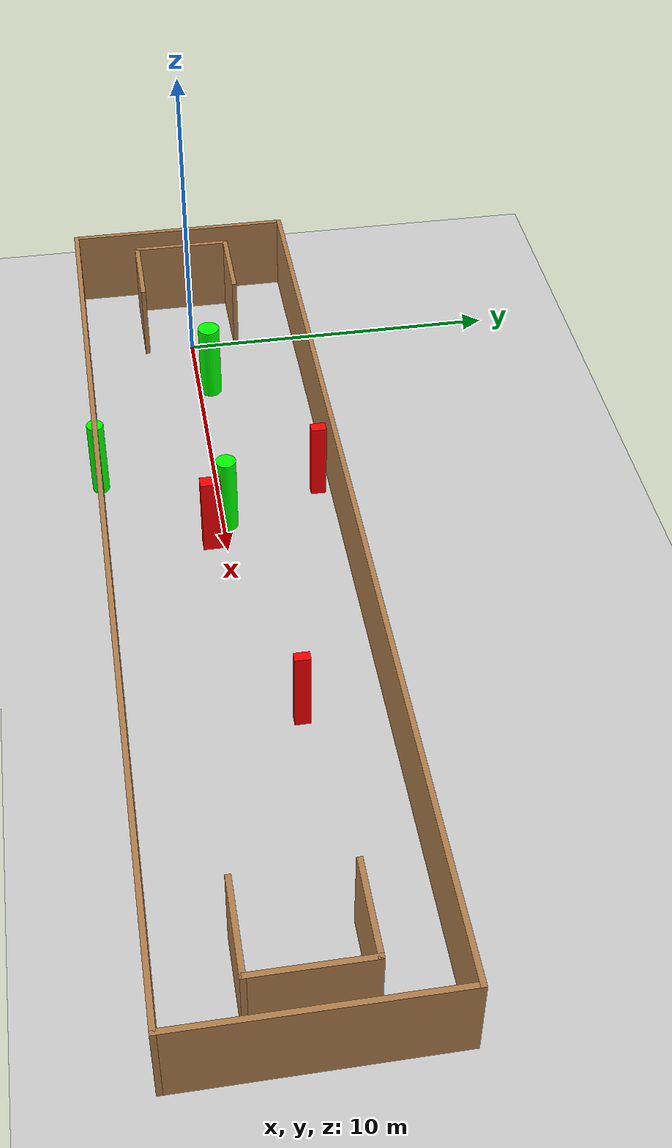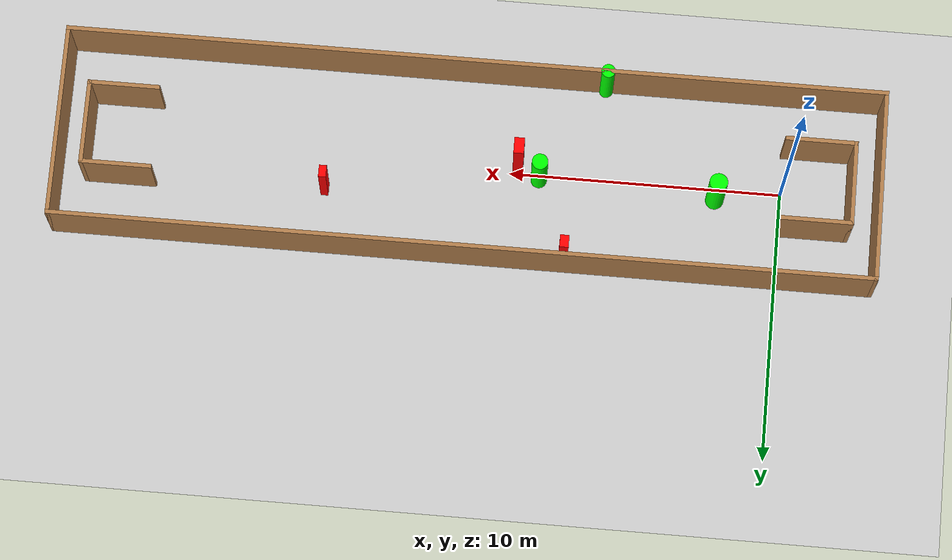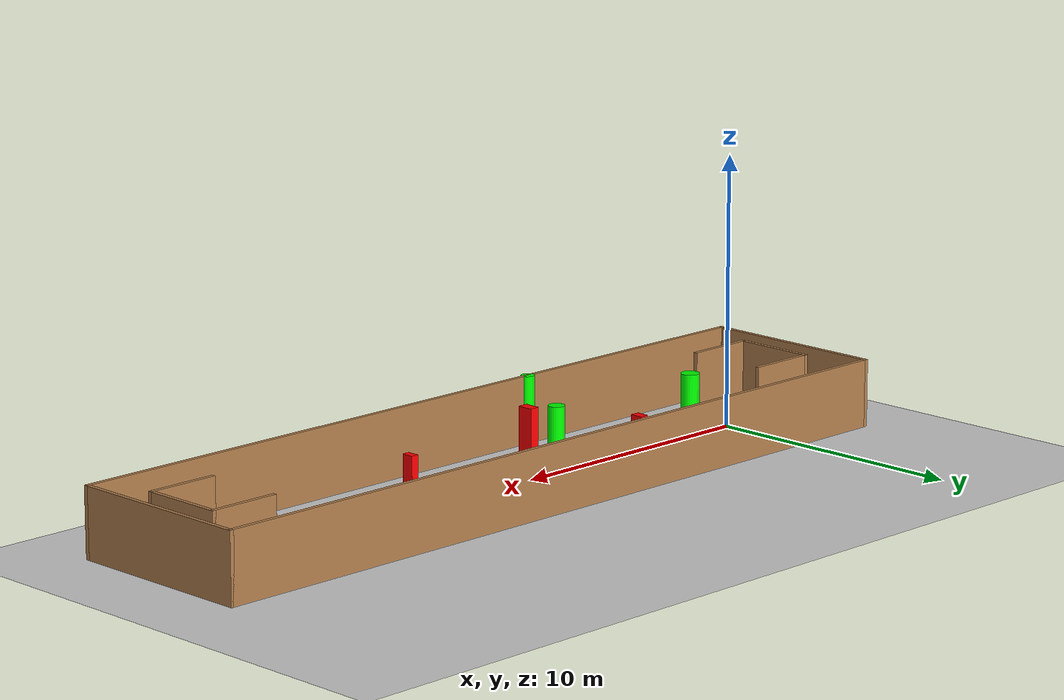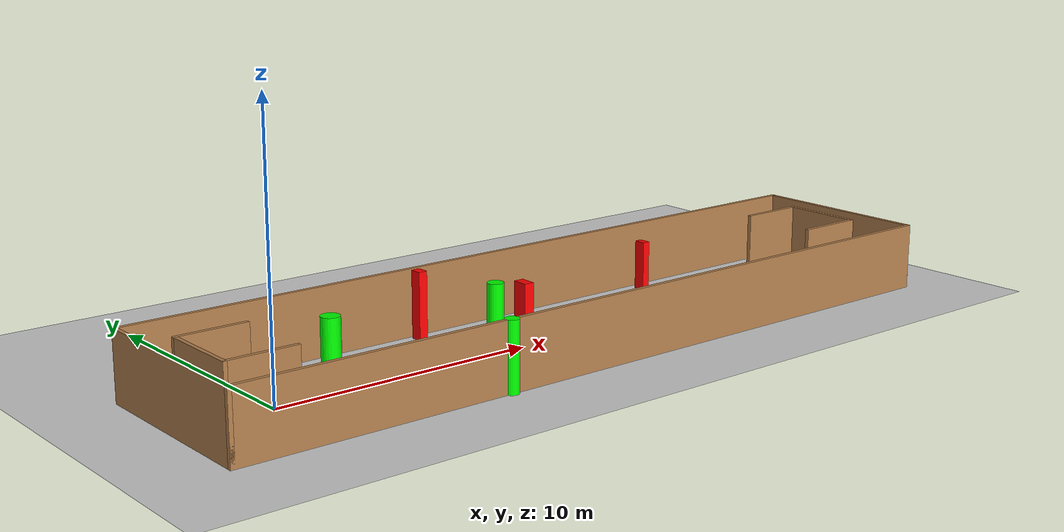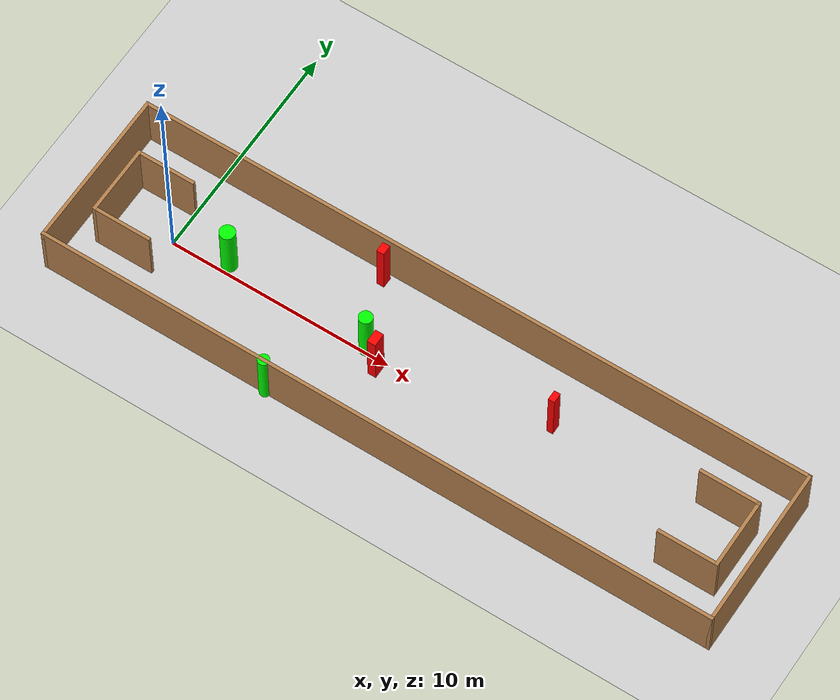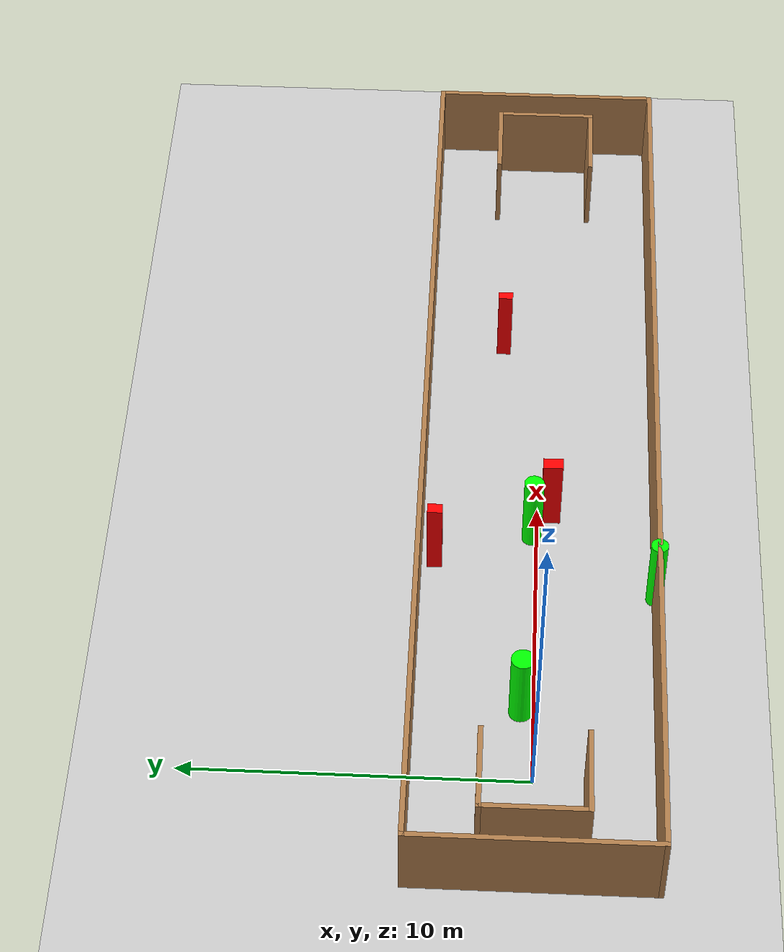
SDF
<sdf version="1.7">
 <world name="default">
  <light name="sun" type="directional">
   <pose>0 0 10 0 -0 0</pose>
   <diffuse>0.8 0.8 0.8 1</diffuse>
   <specular>0.2 0.2 0.2 1</specular>
   <attenuation>
    <range>1000</range>
    <constant>0.9</constant>
    <linear>0.01</linear>
    <quadratic>0.001</quadratic>
   </attenuation>
   <direction>-0.5 0.1 -0.9</direction>
   <spot><inner_angle>0</inner_angle><outer_angle>0</outer_angle><falloff>0</falloff></spot>
  </light>
  <model name="ground_plane">
   <static>1</static>
   <link name="link">
    <collision name="collision">
     <geometry><plane><normal>0 0 1</normal><size>100 100</size></plane></geometry>
     <surface>
      <contact><collide_bitmask>65535</collide_bitmask></contact>
      <friction><ode><mu>100</mu><mu2>50</mu2></ode></friction>
     </surface>
    </collision>
    <visual name="visual">
     <cast_shadows>0</cast_shadows>
     <geometry><plane><normal>0 0 1</normal><size>100 100</size></plane></geometry>
     <material>
      <script><uri>file://media/materials/scripts/gazebo.material</uri><name>Gazebo/Grey</name></script>
     </material>
    </visual>
   </link>
  </model>
  <gravity>0 0 -9.8</gravity>
  <magnetic_field>6e-06 2.3e-05 -4.2e-05</magnetic_field>
  <atmosphere type="adiabatic"/>
  <physics type="ode">
   <max_step_size>0.001</max_step_size>
   <real_time_factor>1</real_time_factor>
   <real_time_update_rate>1000</real_time_update_rate>
  </physics>
  <scene><ambient>0.4 0.4 0.4 1</ambient><background>0.7 0.7 0.7 1</background><shadows>1</shadows></scene>
  <spherical_coordinates>
   <surface_model>EARTH_WGS84</surface_model>
   <latitude_deg>0</latitude_deg>
   <longitude_deg>0</longitude_deg>
   <elevation>0</elevation>
   <heading_deg>0</heading_deg>
  </spherical_coordinates>
  <model name="my_base_walls">
   <link name="Wall_0">
    <collision name="Wall_0_Collision">
     <geometry><box><size>7.15 0.15 2.5</size></box></geometry>
     <pose>0 0 1.25 0 -0 0</pose>
    </collision>
    <visual name="Wall_0_Visual">
     <pose>0 0 1.25 0 -0 0</pose>
     <geometry><box><size>7.15 0.15 2.5</size></box></geometry>
     <material>
      <script><uri>file://media/materials/scripts/gazebo.material</uri><name>Gazebo/Wood</name></script>
      <ambient>1 1 1 1</ambient>
     </material>
     <meta><layer>0</layer></meta>
    </visual>
    <pose>-15 0 0 0 -0 1.5708</pose>
   </link>
   <link name="Wall_10">
    <collision name="Wall_10_Collision">
     <geometry><box><size>2.65 0.15 2.5</size></box></geometry>
     <pose>0 0 1.25 0 -0 0</pose>
    </collision>
    <visual name="Wall_10_Visual">
     <pose>0 0 1.25 0 -0 0</pose>
     <geometry><box><size>2.65 0.15 2.5</size></box></geometry>
     <material>
      <script><uri>file://media/materials/scripts/gazebo.material</uri><name>Gazebo/Wood</name></script>
      <ambient>1 1 1 1</ambient>
     </material>
     <meta><layer>0</layer></meta>
    </visual>
    <pose>-12.75 -1.5 0 0 -0 0</pose>
   </link>
   <link name="Wall_12">
    <collision name="Wall_12_Collision">
     <geometry><box><size>2.65 0.15 2.5</size></box></geometry>
     <pose>0 0 1.25 0 -0 0</pose>
    </collision>
    <visual name="Wall_12_Visual">
     <pose>0 0 1.25 0 -0 0</pose>
     <geometry><box><size>2.65 0.15 2.5</size></box></geometry>
     <material>
      <script><uri>file://media/materials/scripts/gazebo.material</uri><name>Gazebo/Wood</name></script>
      <ambient>1 1 1 1</ambient>
     </material>
     <meta><layer>0</layer></meta>
    </visual>
    <pose>-12.75 1.5 0 0 -0 0</pose>
   </link>
   <link name="Wall_14">
    <collision name="Wall_14_Collision">
     <geometry><box><size>3.15 0.15 2.5</size></box></geometry>
     <pose>0 0 1.25 0 -0 0</pose>
    </collision>
    <visual name="Wall_14_Visual">
     <pose>0 0 1.25 0 -0 0</pose>
     <geometry><box><size>3.15 0.15 2.5</size></box></geometry>
     <material>
      <script><uri>file://media/materials/scripts/gazebo.material</uri><name>Gazebo/Wood</name></script>
      <ambient>1 1 1 1</ambient>
     </material>
     <meta><layer>0</layer></meta>
    </visual>
    <pose>14 0 0 0 -0 -1.5708</pose>
   </link>
   <link name="Wall_15">
    <collision name="Wall_15_Collision">
     <geometry><box><size>2.65 0.15 2.5</size></box></geometry>
     <pose>0 0 1.25 0 -0 0</pose>
    </collision>
    <visual name="Wall_15_Visual">
     <pose>0 0 1.25 0 -0 0</pose>
     <geometry><box><size>2.65 0.15 2.5</size></box></geometry>
     <material>
      <script><uri>file://media/materials/scripts/gazebo.material</uri><name>Gazebo/Wood</name></script>
      <ambient>1 1 1 1</ambient>
     </material>
     <meta><layer>0</layer></meta>
    </visual>
    <pose>12.75 -1.5 0 0 -0 3.14159</pose>
   </link>
   <link name="Wall_17">
    <collision name="Wall_17_Collision">
     <geometry><box><size>2.65 0.15 2.5</size></box></geometry>
     <pose>0 0 1.25 0 -0 0</pose>
    </collision>
    <visual name="Wall_17_Visual">
     <pose>0 0 1.25 0 -0 0</pose>
     <geometry><box><size>2.65 0.15 2.5</size></box></geometry>
     <material>
      <script><uri>file://media/materials/scripts/gazebo.material</uri><name>Gazebo/Wood</name></script>
      <ambient>1 1 1 1</ambient>
     </material>
     <meta><layer>0</layer></meta>
    </visual>
    <pose>12.75 1.5 0 0 -0 3.14159</pose>
   </link>
   <link name="Wall_2">
    <collision name="Wall_2_Collision">
     <geometry><box><size>30.15 0.15 2.5</size></box></geometry>
     <pose>0 0 1.25 0 -0 0</pose>
    </collision>
    <visual name="Wall_2_Visual">
     <pose>0 0 1.25 0 -0 0</pose>
     <geometry><box><size>30.15 0.15 2.5</size></box></geometry>
     <material>
      <script><uri>file://media/materials/scripts/gazebo.material</uri><name>Gazebo/Wood</name></script>
      <ambient>1 1 1 1</ambient>
     </material>
     <meta><layer>0</layer></meta>
    </visual>
    <pose>-0 -3.5 0 0 -0 0</pose>
   </link>
   <link name="Wall_4">
    <collision name="Wall_4_Collision">
     <geometry><box><size>30.15 0.15 2.5</size></box></geometry>
     <pose>0 0 1.25 0 -0 0</pose>
    </collision>
    <visual name="Wall_4_Visual">
     <pose>0 0 1.25 0 -0 0</pose>
     <geometry><box><size>30.15 0.15 2.5</size></box></geometry>
     <material>
      <script><uri>file://media/materials/scripts/gazebo.material</uri><name>Gazebo/Wood</name></script>
      <ambient>1 1 1 1</ambient>
     </material>
     <meta><layer>0</layer></meta>
    </visual>
    <pose>-0 3.5 0 0 -0 0</pose>
   </link>
   <link name="Wall_6">
    <collision name="Wall_6_Collision">
     <geometry><box><size>7.15 0.15 2.5</size></box></geometry>
     <pose>0 0 1.25 0 -0 0</pose>
    </collision>
    <visual name="Wall_6_Visual">
     <pose>0 0 1.25 0 -0 0</pose>
     <geometry><box><size>7.15 0.15 2.5</size></box></geometry>
     <material>
      <script><uri>file://media/materials/scripts/gazebo.material</uri><name>Gazebo/Wood</name></script>
      <ambient>1 1 1 1</ambient>
     </material>
     <meta><layer>0</layer></meta>
    </visual>
    <pose>15 0 0 0 -0 -1.5708</pose>
   </link>
   <link name="Wall_9">
    <collision name="Wall_9_Collision">
     <geometry><box><size>3.15 0.15 2.5</size></box></geometry>
     <pose>0 0 1.25 0 -0 0</pose>
    </collision>
    <visual name="Wall_9_Visual">
     <pose>0 0 1.25 0 -0 0</pose>
     <geometry><box><size>3.15 0.15 2.5</size></box></geometry>
     <material>
      <script><uri>file://media/materials/scripts/gazebo.material</uri><name>Gazebo/Wood</name></script>
      <ambient>1 1 1 1</ambient>
     </material>
     <meta><layer>0</layer></meta>
    </visual>
    <pose>-14 0 0 0 -0 -1.5708</pose>
   </link>
   <static>1</static>
   <pose>11.5 0 0 0 -0 0</pose>
  </model>
  <model name="cylinder1">
   <static>1</static>
   <link name="link">
    <inertial>
     <mass>1</mass>
     <inertia><ixx>0.5</ixx><ixy>0</ixy><ixz>0</ixz><iyy>0.5</iyy><iyz>0</iyz><izz>1</izz></inertia>
    </inertial>
    <collision name="collision">
     <geometry><cylinder><radius>0.2525152361768934</radius><length>2.5</length></cylinder></geometry>
    </collision>
    <visual name="visual">
     <geometry><cylinder><radius>0.2525152361768934</radius><length>2.5</length></cylinder></geometry>
     <material>
      <ambient>0 1 0 1</ambient>
      <diffuse>0 1 0 1</diffuse>
      <specular>0.1 0.1 0.1 1</specular>
      <emissive>0 0 0 0</emissive>
     </material>
    </visual>
   </link>
   <pose>6.6739102648930455 -3.4923385399391913 1.25 0 0 0</pose>
  </model>
  <model name="cylinder2">
   <static>1</static>
   <link name="link">
    <inertial>
     <mass>1</mass>
     <inertia><ixx>0.5</ixx><ixy>0</ixy><ixz>0</ixz><iyy>0.5</iyy><iyz>0</iyz><izz>1</izz></inertia>
    </inertial>
    <collision name="collision">
     <geometry><cylinder><radius>0.29605019395456367</radius><length>2.5</length></cylinder></geometry>
    </collision>
    <visual name="visual">
     <geometry><cylinder><radius>0.29605019395456367</radius><length>2.5</length></cylinder></geometry>
     <material>
      <ambient>0 1 0 1</ambient>
      <diffuse>0 1 0 1</diffuse>
      <specular>0.1 0.1 0.1 1</specular>
      <emissive>0 0 0 0</emissive>
     </material>
    </visual>
   </link>
   <pose>8.892263485782363 0.15046247118168488 1.25 0 0 0</pose>
  </model>
  <model name="cylinder3">
   <static>1</static>
   <link name="link">
    <inertial>
     <mass>1</mass>
     <inertia><ixx>0.5</ixx><ixy>0</ixy><ixz>0</ixz><iyy>0.5</iyy><iyz>0</iyz><izz>1</izz></inertia>
    </inertial>
    <collision name="collision">
     <geometry><cylinder><radius>0.3357026981269463</radius><length>2.5</length></cylinder></geometry>
    </collision>
    <visual name="visual">
     <geometry><cylinder><radius>0.3357026981269463</radius><length>2.5</length></cylinder></geometry>
     <material>
      <ambient>0 1 0 1</ambient>
      <diffuse>0 1 0 1</diffuse>
      <specular>0.1 0.1 0.1 1</specular>
      <emissive>0 0 0 0</emissive>
     </material>
    </visual>
   </link>
   <pose>2.384416160503662 0.3829627165821803 1.25 0 0 0</pose>
  </model>
  <model name="box1">
   <static>1</static>
   <link name="link">
    <inertial>
     <mass>1</mass>
     <inertia><ixx>0.083</ixx><ixy>0</ixy><ixz>0</ixz><iyy>0.083</iyy><iyz>0</iyz><izz>0.083</izz></inertia>
    </inertial>
    <collision name="collision">
     <geometry><box><size>0.3754674424907901 0.5874439887220283 2.5</size></box></geometry>
    </collision>
    <visual name="visual">
     <geometry><box><size>0.3754674424907901 0.5874439887220283 2.5</size></box></geometry>
     <material>
      <ambient>1 0 0 1</ambient>
      <diffuse>1 0 0 1</diffuse>
      <specular>0.1 0.1 0.1 1</specular>
      <emissive>0 0 0 0</emissive>
     </material>
    </visual>
    <sensor name="my_contact" type="contact">
     <contact><collision>box_collision</collision><topic>__default_topic__</topic></contact>
    </sensor>
   </link>
   <pose>9.695214313865439 -0.3983910462600537 1.25 0 0 0</pose>
  </model>
  <model name="box2">
   <static>1</static>
   <link name="link">
    <inertial>
     <mass>1</mass>
     <inertia><ixx>0.083</ixx><ixy>0</ixy><ixz>0</ixz><iyy>0.083</iyy><iyz>0</iyz><izz>0.083</izz></inertia>
    </inertial>
    <collision name="collision">
     <geometry><box><size>0.2747128108008284 0.43786072426624895 2.5</size></box></geometry>
    </collision>
    <visual name="visual">
     <geometry><box><size>0.2747128108008284 0.43786072426624895 2.5</size></box></geometry>
     <material>
      <ambient>1 0 0 1</ambient>
      <diffuse>1 0 0 1</diffuse>
      <specular>0.1 0.1 0.1 1</specular>
      <emissive>0 0 0 0</emissive>
     </material>
    </visual>
    <sensor name="my_contact" type="contact">
     <contact><collision>box_collision</collision><topic>__default_topic__</topic></contact>
    </sensor>
   </link>
   <pose>16.722515383262262 1.1586009956603558 1.25 0 0 0</pose>
  </model>
  <model name="box3">
   <static>1</static>
   <link name="link">
    <inertial>
     <mass>1</mass>
     <inertia><ixx>0.083</ixx><ixy>0</ixy><ixz>0</ixz><iyy>0.083</iyy><iyz>0</iyz><izz>0.083</izz></inertia>
    </inertial>
    <collision name="collision">
     <geometry><box><size>0.33080698062774083 0.4518447445600163 2.5</size></box></geometry>
    </collision>
    <visual name="visual">
     <geometry><box><size>0.33080698062774083 0.4518447445600163 2.5</size></box></geometry>
     <material>
      <ambient>1 0 0 1</ambient>
      <diffuse>1 0 0 1</diffuse>
      <specular>0.1 0.1 0.1 1</specular>
      <emissive>0 0 0 0</emissive>
     </material>
    </visual>
    <sensor name="my_contact" type="contact">
     <contact><collision>box_collision</collision><topic>__default_topic__</topic></contact>
    </sensor>
   </link>
   <pose>7.786058559247159 3.042724476908969 1.25 0 0 0</pose>
  </model>
 </world>
</sdf>
